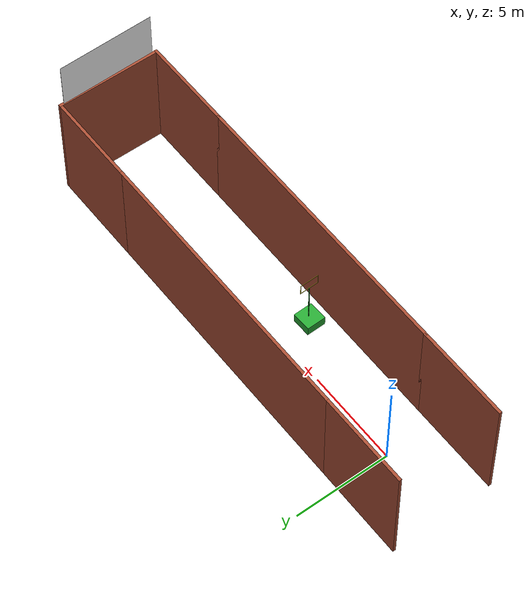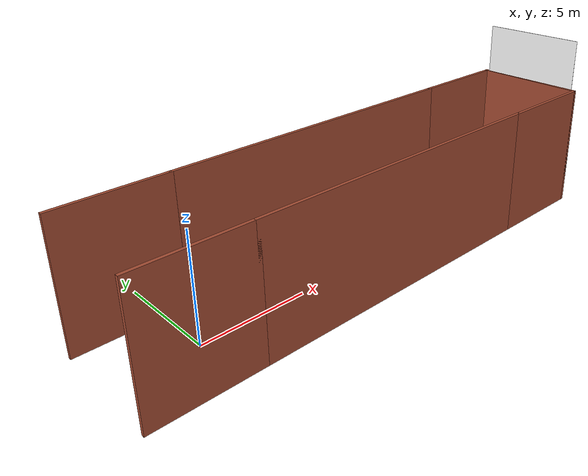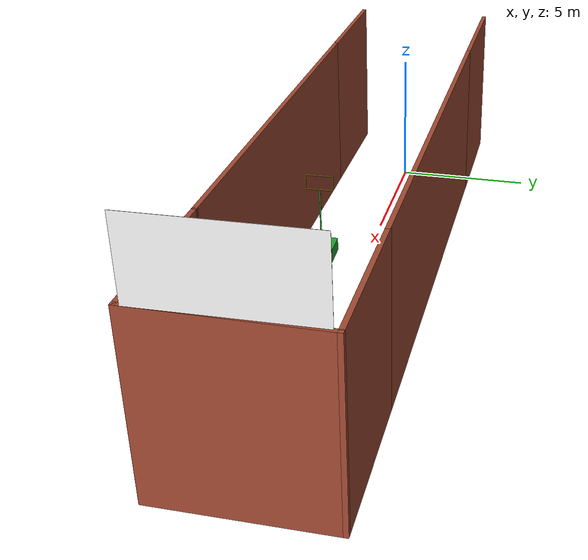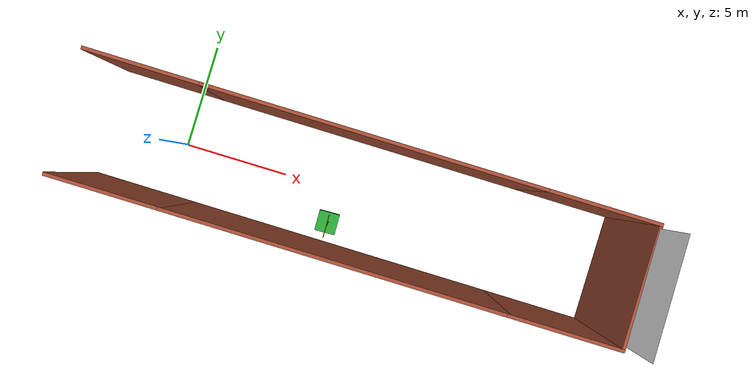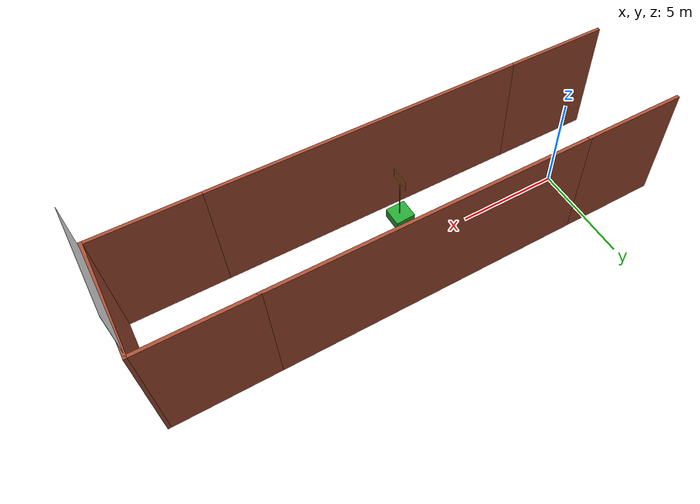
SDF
<sdf version="1.6">
 <world name="vrc_task_1">
  <model name="flipkart_hoop_clone_2">
   <link name="link_0">
    <inertial>
     <mass>0.530306</mass>
     <inertia>
      <ixx>0.0566207</ixx>
      <ixy>0</ixy>
      <ixz>0</ixz>
      <iyy>0.0566207</iyy>
      <iyz>0</iyz>
      <izz>0.0883844</izz>
     </inertia>
    </inertial>
    <pose>0.141833 0.667401 -1.68595 0 -0 0</pose>
    <visual name="visual">
     <geometry><box><size>1 1 0.5</size></box></geometry>
     <material>
      <lighting>1</lighting>
      <script><uri>file://media/materials/scripts/gazebo.material</uri><name>Gazebo/Green</name></script>
      <shader type="pixel"/>
      <emissive>0 0 0 1</emissive>
     </material>
    </visual>
    <collision name="collision">
     <geometry><box><size>1 1 0.5</size></box></geometry>
     <surface>
      <friction>
       <ode><mu>1</mu><mu2>1</mu2><fdir1>0 0 0</fdir1><slip1>0</slip1><slip2>0</slip2></ode>
       <torsional>
        <coefficient>1</coefficient>
        <patch_radius>0</patch_radius>
        <surface_radius>0</surface_radius>
        <use_patch_radius>1</use_patch_radius>
        <ode><slip>0</slip></ode>
       </torsional>
      </friction>
      <bounce><restitution_coefficient>0</restitution_coefficient><threshold>1e+06</threshold></bounce>
      <contact>
       <collide_without_contact>0</collide_without_contact>
       <collide_without_contact_bitmask>1</collide_without_contact_bitmask>
       <collide_bitmask>1</collide_bitmask>
       <ode>
        <soft_cfm>0</soft_cfm>
        <soft_erp>0.2</soft_erp>
        <kp>1e+13</kp>
        <kd>1</kd>
        <max_vel>0.01</max_vel>
        <min_depth>0</min_depth>
       </ode>
       <bullet>
        <split_impulse>1</split_impulse>
        <split_impulse_penetration_threshold>-0.01</split_impulse_penetration_threshold>
        <soft_cfm>0</soft_cfm>
        <soft_erp>0.2</soft_erp>
        <kp>1e+13</kp>
        <kd>1</kd>
       </bullet>
      </contact>
     </surface>
    </collision>
   </link>
   <link name="link_1">
    <inertial>
     <mass>0.25</mass>
     <inertia>
      <ixx>0.130247</ixx>
      <ixy>0</ixy>
      <ixz>0</ixz>
      <iyy>0.130247</iyy>
      <iyz>0</iyz>
      <izz>7.813e-05</izz>
     </inertia>
    </inertial>
    <pose>0.122412 0.714194 -0.478486 0 -0 0</pose>
    <visual name="visual">
     <geometry><cylinder><radius>0.025</radius><length>2.5</length></cylinder></geometry>
     <material>
      <lighting>1</lighting>
      <script><uri>file://media/materials/scripts/gazebo.material</uri><name>Gazebo/Green</name></script>
      <shader type="pixel"/>
      <emissive>0 0 0 1</emissive>
     </material>
    </visual>
    <collision name="collision">
     <geometry><cylinder><radius>0.025</radius><length>2.5</length></cylinder></geometry>
     <surface>
      <friction>
       <ode><mu>1</mu><mu2>1</mu2><fdir1>0 0 0</fdir1><slip1>0</slip1><slip2>0</slip2></ode>
       <torsional>
        <coefficient>1</coefficient>
        <patch_radius>0</patch_radius>
        <surface_radius>0</surface_radius>
        <use_patch_radius>1</use_patch_radius>
        <ode><slip>0</slip></ode>
       </torsional>
      </friction>
      <bounce><restitution_coefficient>0</restitution_coefficient><threshold>1e+06</threshold></bounce>
      <contact>
       <collide_without_contact>0</collide_without_contact>
       <collide_without_contact_bitmask>1</collide_without_contact_bitmask>
       <collide_bitmask>1</collide_bitmask>
       <ode>
        <soft_cfm>0</soft_cfm>
        <soft_erp>0.2</soft_erp>
        <kp>1e+13</kp>
        <kd>1</kd>
        <max_vel>0.01</max_vel>
        <min_depth>0</min_depth>
       </ode>
       <bullet>
        <split_impulse>1</split_impulse>
        <split_impulse_penetration_threshold>-0.01</split_impulse_penetration_threshold>
        <soft_cfm>0</soft_cfm>
        <soft_erp>0.2</soft_erp>
        <kp>1e+13</kp>
        <kd>1</kd>
       </bullet>
      </contact>
     </surface>
    </collision>
   </link>
   <link name="link_2">
    <inertial>
     <mass>0.05</mass>
     <inertia>
      <ixx>0.00416862</ixx>
      <ixy>0</ixy>
      <ixz>0</ixz>
      <iyy>0.00416862</iyy>
      <iyz>0</iyz>
      <izz>3.91e-06</izz>
     </inertia>
    </inertial>
    <pose>0.122412 0.714194 1.32141 1.57 -0 1.57</pose>
    <visual name="visual">
     <geometry><cylinder><radius>0.0125</radius><length>1</length></cylinder></geometry>
     <material>
      <lighting>1</lighting>
      <script><uri>file://media/materials/scripts/gazebo.material</uri><name>Gazebo/Yellow</name></script>
      <shader type="pixel"/>
      <emissive>0 0 0 1</emissive>
     </material>
    </visual>
    <collision name="collision">
     <geometry><cylinder><radius>0.0125</radius><length>1</length></cylinder></geometry>
     <surface>
      <friction>
       <ode><mu>1</mu><mu2>1</mu2><fdir1>0 0 0</fdir1><slip1>0</slip1><slip2>0</slip2></ode>
       <torsional>
        <coefficient>1</coefficient>
        <patch_radius>0</patch_radius>
        <surface_radius>0</surface_radius>
        <use_patch_radius>1</use_patch_radius>
        <ode><slip>0</slip></ode>
       </torsional>
      </friction>
      <bounce><restitution_coefficient>0</restitution_coefficient><threshold>1e+06</threshold></bounce>
      <contact>
       <collide_without_contact>0</collide_without_contact>
       <collide_without_contact_bitmask>1</collide_without_contact_bitmask>
       <collide_bitmask>1</collide_bitmask>
       <ode>
        <soft_cfm>0</soft_cfm>
        <soft_erp>0.2</soft_erp>
        <kp>1e+13</kp>
        <kd>1</kd>
        <max_vel>0.01</max_vel>
        <min_depth>0</min_depth>
       </ode>
       <bullet>
        <split_impulse>1</split_impulse>
        <split_impulse_penetration_threshold>-0.01</split_impulse_penetration_threshold>
        <soft_cfm>0</soft_cfm>
        <soft_erp>0.2</soft_erp>
        <kp>1e+13</kp>
        <kd>1</kd>
       </bullet>
      </contact>
     </surface>
    </collision>
   </link>
   <link name="link_2_clone_0">
    <inertial>
     <mass>0.05</mass>
     <inertia>
      <ixx>0.00416862</ixx>
      <ixy>0</ixy>
      <ixz>0</ixz>
      <iyy>0.00416862</iyy>
      <iyz>0</iyz>
      <izz>3.91e-06</izz>
     </inertia>
    </inertial>
    <pose>0.122412 0.714194 0.771414 1.57 -0 1.57</pose>
    <visual name="visual">
     <geometry><cylinder><radius>0.0125</radius><length>1</length></cylinder></geometry>
     <material>
      <lighting>1</lighting>
      <script><uri>file://media/materials/scripts/gazebo.material</uri><name>Gazebo/Yellow</name></script>
      <shader type="pixel"/>
      <emissive>0 0 0 1</emissive>
     </material>
    </visual>
    <collision name="collision">
     <geometry><cylinder><radius>0.0125</radius><length>1</length></cylinder></geometry>
     <surface>
      <friction>
       <ode><mu>1</mu><mu2>1</mu2><fdir1>0 0 0</fdir1><slip1>0</slip1><slip2>0</slip2></ode>
       <torsional>
        <coefficient>1</coefficient>
        <patch_radius>0</patch_radius>
        <surface_radius>0</surface_radius>
        <use_patch_radius>1</use_patch_radius>
        <ode><slip>0</slip></ode>
       </torsional>
      </friction>
      <bounce><restitution_coefficient>0</restitution_coefficient><threshold>1e+06</threshold></bounce>
      <contact>
       <collide_without_contact>0</collide_without_contact>
       <collide_without_contact_bitmask>1</collide_without_contact_bitmask>
       <collide_bitmask>1</collide_bitmask>
       <ode>
        <soft_cfm>0</soft_cfm>
        <soft_erp>0.2</soft_erp>
        <kp>1e+13</kp>
        <kd>1</kd>
        <max_vel>0.01</max_vel>
        <min_depth>0</min_depth>
       </ode>
       <bullet>
        <split_impulse>1</split_impulse>
        <split_impulse_penetration_threshold>-0.01</split_impulse_penetration_threshold>
        <soft_cfm>0</soft_cfm>
        <soft_erp>0.2</soft_erp>
        <kp>1e+13</kp>
        <kd>1</kd>
       </bullet>
      </contact>
     </surface>
    </collision>
   </link>
   <link name="link_3_clone_clone">
    <inertial>
     <mass>0.025</mass>
     <inertia>
      <ixx>0.00063118</ixx>
      <ixy>0</ixy>
      <ixz>0</ixz>
      <iyy>0.00063118</iyy>
      <iyz>0</iyz>
      <izz>1.95e-06</izz>
     </inertia>
    </inertial>
    <pose>-0.377588 0.714194 1.04641 8e-06 -0 8e-06</pose>
    <visual name="visual">
     <geometry><cylinder><radius>0.0125</radius><length>0.55</length></cylinder></geometry>
     <material>
      <lighting>1</lighting>
      <script><uri>file://media/materials/scripts/gazebo.material</uri><name>Gazebo/Yellow</name></script>
      <shader type="pixel"/>
      <emissive>0 0 0 1</emissive>
     </material>
    </visual>
    <collision name="collision">
     <geometry><cylinder><radius>0.0125</radius><length>0.55</length></cylinder></geometry>
     <surface>
      <friction>
       <ode><mu>1</mu><mu2>1</mu2><fdir1>0 0 0</fdir1><slip1>0</slip1><slip2>0</slip2></ode>
       <torsional>
        <coefficient>1</coefficient>
        <patch_radius>0</patch_radius>
        <surface_radius>0</surface_radius>
        <use_patch_radius>1</use_patch_radius>
        <ode><slip>0</slip></ode>
       </torsional>
      </friction>
      <bounce><restitution_coefficient>0</restitution_coefficient><threshold>1e+06</threshold></bounce>
      <contact>
       <collide_without_contact>0</collide_without_contact>
       <collide_without_contact_bitmask>1</collide_without_contact_bitmask>
       <collide_bitmask>1</collide_bitmask>
       <ode>
        <soft_cfm>0</soft_cfm>
        <soft_erp>0.2</soft_erp>
        <kp>1e+13</kp>
        <kd>1</kd>
        <max_vel>0.01</max_vel>
        <min_depth>0</min_depth>
       </ode>
       <bullet>
        <split_impulse>1</split_impulse>
        <split_impulse_penetration_threshold>-0.01</split_impulse_penetration_threshold>
        <soft_cfm>0</soft_cfm>
        <soft_erp>0.2</soft_erp>
        <kp>1e+13</kp>
        <kd>1</kd>
       </bullet>
      </contact>
     </surface>
    </collision>
   </link>
   <link name="link_3_clone_clone_clone">
    <inertial>
     <mass>0.025</mass>
     <inertia>
      <ixx>0.00063118</ixx>
      <ixy>0</ixy>
      <ixz>0</ixz>
      <iyy>0.00063118</iyy>
      <iyz>0</iyz>
      <izz>1.95e-06</izz>
     </inertia>
    </inertial>
    <pose>0.622412 0.714194 1.04641 5.7e-05 -0 5.7e-05</pose>
    <visual name="visual">
     <geometry><cylinder><radius>0.0125</radius><length>0.55</length></cylinder></geometry>
     <material>
      <lighting>1</lighting>
      <script><uri>file://media/materials/scripts/gazebo.material</uri><name>Gazebo/Yellow</name></script>
      <shader type="pixel"/>
      <emissive>0 0 0 1</emissive>
     </material>
    </visual>
    <collision name="collision">
     <geometry><cylinder><radius>0.0125</radius><length>0.55</length></cylinder></geometry>
     <surface>
      <friction>
       <ode><mu>1</mu><mu2>1</mu2><fdir1>0 0 0</fdir1><slip1>0</slip1><slip2>0</slip2></ode>
       <torsional>
        <coefficient>1</coefficient>
        <patch_radius>0</patch_radius>
        <surface_radius>0</surface_radius>
        <use_patch_radius>1</use_patch_radius>
        <ode><slip>0</slip></ode>
       </torsional>
      </friction>
      <bounce><restitution_coefficient>0</restitution_coefficient><threshold>1e+06</threshold></bounce>
      <contact>
       <collide_without_contact>0</collide_without_contact>
       <collide_without_contact_bitmask>1</collide_without_contact_bitmask>
       <collide_bitmask>1</collide_bitmask>
       <ode>
        <soft_cfm>0</soft_cfm>
        <soft_erp>0.2</soft_erp>
        <kp>1e+13</kp>
        <kd>1</kd>
        <max_vel>0.01</max_vel>
        <min_depth>0</min_depth>
       </ode>
       <bullet>
        <split_impulse>1</split_impulse>
        <split_impulse_penetration_threshold>-0.01</split_impulse_penetration_threshold>
        <soft_cfm>0</soft_cfm>
        <soft_erp>0.2</soft_erp>
        <kp>1e+13</kp>
        <kd>1</kd>
       </bullet>
      </contact>
     </surface>
    </collision>
   </link>
   <joint name="link_0_JOINT_0" type="fixed">
    <parent>link_0</parent>
    <child>link_1</child>
    <physics>
     <ode><limit><cfm>0</cfm><erp>0.2</erp></limit><suspension><cfm>0</cfm><erp>0.2</erp></suspension></ode>
    </physics>
   </joint>
   <joint name="link_1_JOINT_0" type="fixed">
    <parent>link_1</parent>
    <child>link_2_clone_0</child>
    <physics>
     <ode><limit><cfm>0</cfm><erp>0.2</erp></limit><suspension><cfm>0</cfm><erp>0.2</erp></suspension></ode>
    </physics>
   </joint>
   <joint name="link_2_JOINT_2" type="fixed">
    <parent>link_2</parent>
    <child>link_3_clone_clone_clone</child>
    <physics>
     <ode><limit><cfm>0</cfm><erp>0.2</erp></limit><suspension><cfm>0</cfm><erp>0.2</erp></suspension></ode>
    </physics>
   </joint>
   <joint name="link_2_clone_0_JOINT_4" type="fixed">
    <parent>link_2_clone_0</parent>
    <child>link_3_clone_clone</child>
    <physics>
     <ode><limit><cfm>0</cfm><erp>0.2</erp></limit><suspension><cfm>0</cfm><erp>0.2</erp></suspension></ode>
    </physics>
   </joint>
   <joint name="link_3_clone_clone_JOINT_1" type="fixed">
    <parent>link_3_clone_clone</parent>
    <child>link_2</child>
    <physics>
     <ode><limit><cfm>0</cfm><erp>0.2</erp></limit><suspension><cfm>0</cfm><erp>0.2</erp></suspension></ode>
    </physics>
   </joint>
   <joint name="link_3_clone_clone_clone_JOINT_3" type="fixed">
    <parent>link_3_clone_clone_clone</parent>
    <child>link_2_clone_0</child>
    <physics>
     <ode><limit><cfm>0</cfm><erp>0.2</erp></limit><suspension><cfm>0</cfm><erp>0.2</erp></suspension></ode>
    </physics>
   </joint>
   <static>0</static>
   <pose>7.00055 -1.49901 1.93595 0 -1e-05 -1.54256</pose>
  </model>
  <model name="new_wall_flipkart4">
   <link name="Wall_1">
    <pose>-9.85 2.675 0 0 -0 0</pose>
    <inertial>
     <mass>1</mass>
     <inertia><ixx>1</ixx><ixy>0</ixy><ixz>0</ixz><iyy>1</iyy><iyz>0</iyz><izz>1</izz></inertia>
    </inertial>
    <visual name="Wall_1_Visual">
     <pose>0 0 3 0 -0 0</pose>
     <geometry><box><size>5 0.15 6</size></box></geometry>
     <material>
      <script><uri>file://media/materials/scripts/gazebo.material</uri><name>Gazebo/Bricks</name></script>
      <ambient>1 1 1 1</ambient>
      <shader type="pixel"><normal_map>__default__</normal_map></shader>
      <diffuse>1 1 1 1</diffuse>
      <specular>0.2 0.2 0.2 1</specular>
      <emissive>0 0 0 1</emissive>
     </material>
     <meta><layer>0</layer></meta>
    </visual>
    <collision name="Wall_1_Collision">
     <pose>0 0 3 0 -0 0</pose>
     <geometry><box><size>5 0.15 6</size></box></geometry>
     <surface>
      <friction>
       <ode><mu>1</mu><mu2>1</mu2><fdir1>0 0 0</fdir1><slip1>0</slip1><slip2>0</slip2></ode>
       <torsional>
        <coefficient>1</coefficient>
        <patch_radius>0</patch_radius>
        <surface_radius>0</surface_radius>
        <use_patch_radius>1</use_patch_radius>
        <ode><slip>0</slip></ode>
       </torsional>
      </friction>
      <bounce><restitution_coefficient>0</restitution_coefficient><threshold>1e+06</threshold></bounce>
      <contact>
       <collide_without_contact>0</collide_without_contact>
       <collide_without_contact_bitmask>1</collide_without_contact_bitmask>
       <collide_bitmask>1</collide_bitmask>
       <ode>
        <soft_cfm>0</soft_cfm>
        <soft_erp>0.2</soft_erp>
        <kp>1e+13</kp>
        <kd>1</kd>
        <max_vel>0.01</max_vel>
        <min_depth>0</min_depth>
       </ode>
       <bullet>
        <split_impulse>1</split_impulse>
        <split_impulse_penetration_threshold>-0.01</split_impulse_penetration_threshold>
        <soft_cfm>0</soft_cfm>
        <soft_erp>0.2</soft_erp>
        <kp>1e+13</kp>
        <kd>1</kd>
       </bullet>
      </contact>
     </surface>
    </collision>
   </link>
   <link name="Wall_2">
    <pose>-0 2.675 0 0 -0 0</pose>
    <inertial>
     <mass>1</mass>
     <inertia><ixx>1</ixx><ixy>0</ixy><ixz>0</ixz><iyy>1</iyy><iyz>0</iyz><izz>1</izz></inertia>
    </inertial>
    <visual name="Wall_2_Visual">
     <pose>0 0 3 0 -0 0</pose>
     <geometry><box><size>15 0.15 6</size></box></geometry>
     <material>
      <script><uri>file://media/materials/scripts/gazebo.material</uri><name>Gazebo/Bricks</name></script>
      <ambient>1 1 1 1</ambient>
      <shader type="pixel"><normal_map>__default__</normal_map></shader>
      <diffuse>1 1 1 1</diffuse>
      <specular>0.2 0.2 0.2 1</specular>
      <emissive>0 0 0 1</emissive>
     </material>
     <meta><layer>0</layer></meta>
    </visual>
    <collision name="Wall_2_Collision">
     <pose>0 0 3 0 -0 0</pose>
     <geometry><box><size>15 0.15 6</size></box></geometry>
     <surface>
      <friction>
       <ode><mu>1</mu><mu2>1</mu2><fdir1>0 0 0</fdir1><slip1>0</slip1><slip2>0</slip2></ode>
       <torsional>
        <coefficient>1</coefficient>
        <patch_radius>0</patch_radius>
        <surface_radius>0</surface_radius>
        <use_patch_radius>1</use_patch_radius>
        <ode><slip>0</slip></ode>
       </torsional>
      </friction>
      <bounce><restitution_coefficient>0</restitution_coefficient><threshold>1e+06</threshold></bounce>
      <contact>
       <collide_without_contact>0</collide_without_contact>
       <collide_without_contact_bitmask>1</collide_without_contact_bitmask>
       <collide_bitmask>1</collide_bitmask>
       <ode>
        <soft_cfm>0</soft_cfm>
        <soft_erp>0.2</soft_erp>
        <kp>1e+13</kp>
        <kd>1</kd>
        <max_vel>0.01</max_vel>
        <min_depth>0</min_depth>
       </ode>
       <bullet>
        <split_impulse>1</split_impulse>
        <split_impulse_penetration_threshold>-0.01</split_impulse_penetration_threshold>
        <soft_cfm>0</soft_cfm>
        <soft_erp>0.2</soft_erp>
        <kp>1e+13</kp>
        <kd>1</kd>
       </bullet>
      </contact>
     </surface>
    </collision>
   </link>
   <link name="Wall_3">
    <pose>9.85 2.675 0 0 -0 0</pose>
    <inertial>
     <mass>1</mass>
     <inertia><ixx>1</ixx><ixy>0</ixy><ixz>0</ixz><iyy>1</iyy><iyz>0</iyz><izz>1</izz></inertia>
    </inertial>
    <visual name="Wall_3_Visual">
     <pose>0 0 3 0 -0 0</pose>
     <geometry><box><size>5 0.15 6</size></box></geometry>
     <material>
      <script><uri>file://media/materials/scripts/gazebo.material</uri><name>Gazebo/Bricks</name></script>
      <ambient>1 1 1 1</ambient>
      <shader type="pixel"><normal_map>__default__</normal_map></shader>
      <diffuse>1 1 1 1</diffuse>
      <specular>0.2 0.2 0.2 1</specular>
      <emissive>0 0 0 1</emissive>
     </material>
     <meta><layer>0</layer></meta>
    </visual>
    <collision name="Wall_3_Collision">
     <pose>0 0 3 0 -0 0</pose>
     <geometry><box><size>5 0.15 6</size></box></geometry>
     <surface>
      <friction>
       <ode><mu>1</mu><mu2>1</mu2><fdir1>0 0 0</fdir1><slip1>0</slip1><slip2>0</slip2></ode>
       <torsional>
        <coefficient>1</coefficient>
        <patch_radius>0</patch_radius>
        <surface_radius>0</surface_radius>
        <use_patch_radius>1</use_patch_radius>
        <ode><slip>0</slip></ode>
       </torsional>
      </friction>
      <bounce><restitution_coefficient>0</restitution_coefficient><threshold>1e+06</threshold></bounce>
      <contact>
       <collide_without_contact>0</collide_without_contact>
       <collide_without_contact_bitmask>1</collide_without_contact_bitmask>
       <collide_bitmask>1</collide_bitmask>
       <ode>
        <soft_cfm>0</soft_cfm>
        <soft_erp>0.2</soft_erp>
        <kp>1e+13</kp>
        <kd>1</kd>
        <max_vel>0.01</max_vel>
        <min_depth>0</min_depth>
       </ode>
       <bullet>
        <split_impulse>1</split_impulse>
        <split_impulse_penetration_threshold>-0.01</split_impulse_penetration_threshold>
        <soft_cfm>0</soft_cfm>
        <soft_erp>0.2</soft_erp>
        <kp>1e+13</kp>
        <kd>1</kd>
       </bullet>
      </contact>
     </surface>
    </collision>
   </link>
   <link name="Wall_6">
    <pose>9.85 -2.675 0 0 -0 3.14159</pose>
    <inertial>
     <mass>1</mass>
     <inertia><ixx>1</ixx><ixy>0</ixy><ixz>0</ixz><iyy>1</iyy><iyz>0</iyz><izz>1</izz></inertia>
    </inertial>
    <visual name="Wall_6_Visual">
     <pose>0 0 3 0 -0 0</pose>
     <geometry><box><size>5 0.15 6</size></box></geometry>
     <material>
      <script><uri>file://media/materials/scripts/gazebo.material</uri><name>Gazebo/Bricks</name></script>
      <ambient>1 1 1 1</ambient>
      <shader type="pixel"><normal_map>__default__</normal_map></shader>
      <diffuse>1 1 1 1</diffuse>
      <specular>0.2 0.2 0.2 1</specular>
      <emissive>0 0 0 1</emissive>
     </material>
     <meta><layer>0</layer></meta>
    </visual>
    <collision name="Wall_6_Collision">
     <pose>0 0 3 0 -0 0</pose>
     <geometry><box><size>5 0.15 6</size></box></geometry>
     <surface>
      <friction>
       <ode><mu>1</mu><mu2>1</mu2><fdir1>0 0 0</fdir1><slip1>0</slip1><slip2>0</slip2></ode>
       <torsional>
        <coefficient>1</coefficient>
        <patch_radius>0</patch_radius>
        <surface_radius>0</surface_radius>
        <use_patch_radius>1</use_patch_radius>
        <ode><slip>0</slip></ode>
       </torsional>
      </friction>
      <bounce><restitution_coefficient>0</restitution_coefficient><threshold>1e+06</threshold></bounce>
      <contact>
       <collide_without_contact>0</collide_without_contact>
       <collide_without_contact_bitmask>1</collide_without_contact_bitmask>
       <collide_bitmask>1</collide_bitmask>
       <ode>
        <soft_cfm>0</soft_cfm>
        <soft_erp>0.2</soft_erp>
        <kp>1e+13</kp>
        <kd>1</kd>
        <max_vel>0.01</max_vel>
        <min_depth>0</min_depth>
       </ode>
       <bullet>
        <split_impulse>1</split_impulse>
        <split_impulse_penetration_threshold>-0.01</split_impulse_penetration_threshold>
        <soft_cfm>0</soft_cfm>
        <soft_erp>0.2</soft_erp>
        <kp>1e+13</kp>
        <kd>1</kd>
       </bullet>
      </contact>
     </surface>
    </collision>
   </link>
   <link name="Wall_7">
    <pose>0 -2.675 0 0 -0 3.14159</pose>
    <inertial>
     <mass>1</mass>
     <inertia><ixx>1</ixx><ixy>0</ixy><ixz>0</ixz><iyy>1</iyy><iyz>0</iyz><izz>1</izz></inertia>
    </inertial>
    <visual name="Wall_7_Visual">
     <pose>0 0 3 0 -0 0</pose>
     <geometry><box><size>15 0.15 6</size></box></geometry>
     <material>
      <script><uri>file://media/materials/scripts/gazebo.material</uri><name>Gazebo/Bricks</name></script>
      <ambient>1 1 1 1</ambient>
      <shader type="pixel"><normal_map>__default__</normal_map></shader>
      <diffuse>1 1 1 1</diffuse>
      <specular>0.2 0.2 0.2 1</specular>
      <emissive>0 0 0 1</emissive>
     </material>
     <meta><layer>0</layer></meta>
    </visual>
    <collision name="Wall_7_Collision">
     <pose>0 0 3 0 -0 0</pose>
     <geometry><box><size>15 0.15 6</size></box></geometry>
     <surface>
      <friction>
       <ode><mu>1</mu><mu2>1</mu2><fdir1>0 0 0</fdir1><slip1>0</slip1><slip2>0</slip2></ode>
       <torsional>
        <coefficient>1</coefficient>
        <patch_radius>0</patch_radius>
        <surface_radius>0</surface_radius>
        <use_patch_radius>1</use_patch_radius>
        <ode><slip>0</slip></ode>
       </torsional>
      </friction>
      <bounce><restitution_coefficient>0</restitution_coefficient><threshold>1e+06</threshold></bounce>
      <contact>
       <collide_without_contact>0</collide_without_contact>
       <collide_without_contact_bitmask>1</collide_without_contact_bitmask>
       <collide_bitmask>1</collide_bitmask>
       <ode>
        <soft_cfm>0</soft_cfm>
        <soft_erp>0.2</soft_erp>
        <kp>1e+13</kp>
        <kd>1</kd>
        <max_vel>0.01</max_vel>
        <min_depth>0</min_depth>
       </ode>
       <bullet>
        <split_impulse>1</split_impulse>
        <split_impulse_penetration_threshold>-0.01</split_impulse_penetration_threshold>
        <soft_cfm>0</soft_cfm>
        <soft_erp>0.2</soft_erp>
        <kp>1e+13</kp>
        <kd>1</kd>
       </bullet>
      </contact>
     </surface>
    </collision>
   </link>
   <link name="Wall_8">
    <pose>-9.85 -2.675 0 0 -0 3.14159</pose>
    <inertial>
     <mass>1</mass>
     <inertia><ixx>1</ixx><ixy>0</ixy><ixz>0</ixz><iyy>1</iyy><iyz>0</iyz><izz>1</izz></inertia>
    </inertial>
    <visual name="Wall_8_Visual">
     <pose>0 0 3 0 -0 0</pose>
     <geometry><box><size>5 0.15 6</size></box></geometry>
     <material>
      <script><uri>file://media/materials/scripts/gazebo.material</uri><name>Gazebo/Bricks</name></script>
      <ambient>1 1 1 1</ambient>
      <shader type="pixel"><normal_map>__default__</normal_map></shader>
      <diffuse>1 1 1 1</diffuse>
      <specular>0.2 0.2 0.2 1</specular>
      <emissive>0 0 0 1</emissive>
     </material>
     <meta><layer>0</layer></meta>
    </visual>
    <collision name="Wall_8_Collision">
     <pose>0 0 3 0 -0 0</pose>
     <geometry><box><size>5 0.15 6</size></box></geometry>
     <surface>
      <friction>
       <ode><mu>1</mu><mu2>1</mu2><fdir1>0 0 0</fdir1><slip1>0</slip1><slip2>0</slip2></ode>
       <torsional>
        <coefficient>1</coefficient>
        <patch_radius>0</patch_radius>
        <surface_radius>0</surface_radius>
        <use_patch_radius>1</use_patch_radius>
        <ode><slip>0</slip></ode>
       </torsional>
      </friction>
      <bounce><restitution_coefficient>0</restitution_coefficient><threshold>1e+06</threshold></bounce>
      <contact>
       <collide_without_contact>0</collide_without_contact>
       <collide_without_contact_bitmask>1</collide_without_contact_bitmask>
       <collide_bitmask>1</collide_bitmask>
       <ode>
        <soft_cfm>0</soft_cfm>
        <soft_erp>0.2</soft_erp>
        <kp>1e+13</kp>
        <kd>1</kd>
        <max_vel>0.01</max_vel>
        <min_depth>0</min_depth>
       </ode>
       <bullet>
        <split_impulse>1</split_impulse>
        <split_impulse_penetration_threshold>-0.01</split_impulse_penetration_threshold>
        <soft_cfm>0</soft_cfm>
        <soft_erp>0.2</soft_erp>
        <kp>1e+13</kp>
        <kd>1</kd>
       </bullet>
      </contact>
     </surface>
    </collision>
   </link>
   <link name="Wall_9">
    <pose>-12.275 0 0 0 -0 1.5708</pose>
    <inertial>
     <mass>1</mass>
     <inertia><ixx>1</ixx><ixy>0</ixy><ixz>0</ixz><iyy>1</iyy><iyz>0</iyz><izz>1</izz></inertia>
    </inertial>
    <visual name="Wall_9_Visual">
     <pose>0 0 3 0 -0 0</pose>
     <geometry><box><size>5.5 0.15 6</size></box></geometry>
     <material>
      <script><uri>file://media/materials/scripts/gazebo.material</uri><name>Gazebo/Bricks</name></script>
      <ambient>1 1 1 1</ambient>
      <shader type="pixel"><normal_map>__default__</normal_map></shader>
      <emissive>0 0 0 1</emissive>
      <diffuse>1 1 1 1</diffuse>
      <specular>0.2 0.2 0.2 1</specular>
     </material>
     <meta><layer>0</layer></meta>
    </visual>
    <collision name="Wall_9_Collision">
     <pose>0 0 3 0 -0 0</pose>
     <geometry><box><size>5.5 0.15 6</size></box></geometry>
     <surface>
      <friction>
       <ode><mu>1</mu><mu2>1</mu2><fdir1>0 0 0</fdir1><slip1>0</slip1><slip2>0</slip2></ode>
       <torsional>
        <coefficient>1</coefficient>
        <patch_radius>0</patch_radius>
        <surface_radius>0</surface_radius>
        <use_patch_radius>1</use_patch_radius>
        <ode><slip>0</slip></ode>
       </torsional>
      </friction>
      <bounce><restitution_coefficient>0</restitution_coefficient><threshold>1e+06</threshold></bounce>
      <contact>
       <collide_without_contact>0</collide_without_contact>
       <collide_without_contact_bitmask>1</collide_without_contact_bitmask>
       <collide_bitmask>1</collide_bitmask>
       <ode>
        <soft_cfm>0</soft_cfm>
        <soft_erp>0.2</soft_erp>
        <kp>1e+13</kp>
        <kd>1</kd>
        <max_vel>0.01</max_vel>
        <min_depth>0</min_depth>
       </ode>
       <bullet>
        <split_impulse>1</split_impulse>
        <split_impulse_penetration_threshold>-0.01</split_impulse_penetration_threshold>
        <soft_cfm>0</soft_cfm>
        <soft_erp>0.2</soft_erp>
        <kp>1e+13</kp>
        <kd>1</kd>
       </bullet>
      </contact>
     </surface>
    </collision>
   </link>
   <model name="banner">
    <link name="link_0">
     <inertial>
      <mass>1</mass>
      <inertia>
       <ixx>0.166667</ixx>
       <ixy>0</ixy>
       <ixz>0</ixz>
       <iyy>0.166667</iyy>
       <iyz>0</iyz>
       <izz>0.166667</izz>
      </inertia>
     </inertial>
     <visual name="visual">
      <geometry><box><size>5 0.01 2.5</size></box></geometry>
      <material>
       <script>
        <uri>model://banner/materials/scripts</uri>
        <uri>model://banner/materials/texture/flipkart.jpg</uri>
        <name>flipkart/banner</name>
       </script>
       <shader type="pixel"><normal_map>__default__</normal_map></shader>
       <ambient>1 1 1 1</ambient>
       <diffuse>1 1 1 1</diffuse>
       <specular>0 0 0 1</specular>
       <emissive>0 0 0 1</emissive>
      </material>
     </visual>
     <collision name="collision">
      <geometry><box><size>5 0.01 2.5</size></box></geometry>
      <surface>
       <friction>
        <ode><mu>1</mu><mu2>1</mu2><fdir1>0 0 0</fdir1><slip1>0</slip1><slip2>0</slip2></ode>
        <torsional>
         <coefficient>1</coefficient>
         <patch_radius>0</patch_radius>
         <surface_radius>0</surface_radius>
         <use_patch_radius>1</use_patch_radius>
         <ode><slip>0</slip></ode>
        </torsional>
       </friction>
       <bounce><restitution_coefficient>0</restitution_coefficient><threshold>1e+06</threshold></bounce>
       <contact>
        <collide_without_contact>0</collide_without_contact>
        <collide_without_contact_bitmask>1</collide_without_contact_bitmask>
        <collide_bitmask>1</collide_bitmask>
        <ode>
         <soft_cfm>0</soft_cfm>
         <soft_erp>0.2</soft_erp>
         <kp>1e+13</kp>
         <kd>1</kd>
         <max_vel>0.01</max_vel>
         <min_depth>0</min_depth>
        </ode>
        <bullet>
         <split_impulse>1</split_impulse>
         <split_impulse_penetration_threshold>-0.01</split_impulse_penetration_threshold>
         <soft_cfm>0</soft_cfm>
         <soft_erp>0.2</soft_erp>
         <kp>1e+13</kp>
         <kd>1</kd>
        </bullet>
       </contact>
      </surface>
     </collision>
    </link>
    <static>0</static>
    <pose>-12.3018 -0.009422 7.19905 0 0 -1.55354</pose>
   </model>
   <joint name="link_0_JOINT_0" type="fixed">
    <parent>banner::link_0</parent>
    <child>Wall_9</child>
    <physics>
     <ode><limit><cfm>0</cfm><erp>0.2</erp></limit><suspension><cfm>0</cfm><erp>0.2</erp></suspension></ode>
    </physics>
   </joint>
   <static>1</static>
   <pose>8.5 0 0 0 -0 3.14</pose>
  </model>
 </world>
</sdf>
